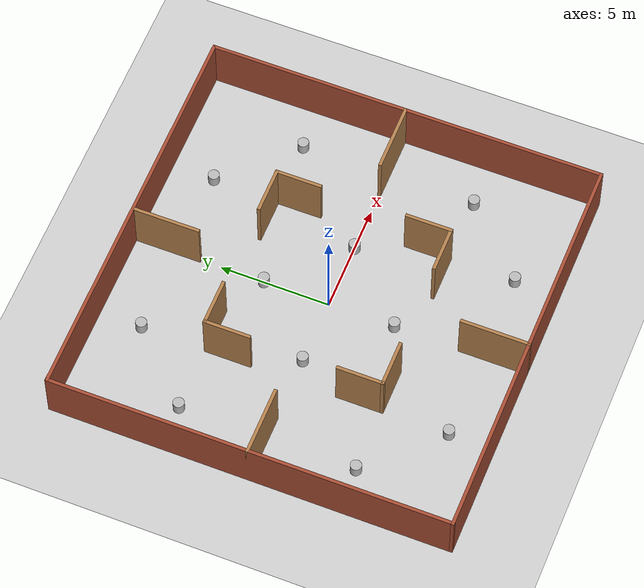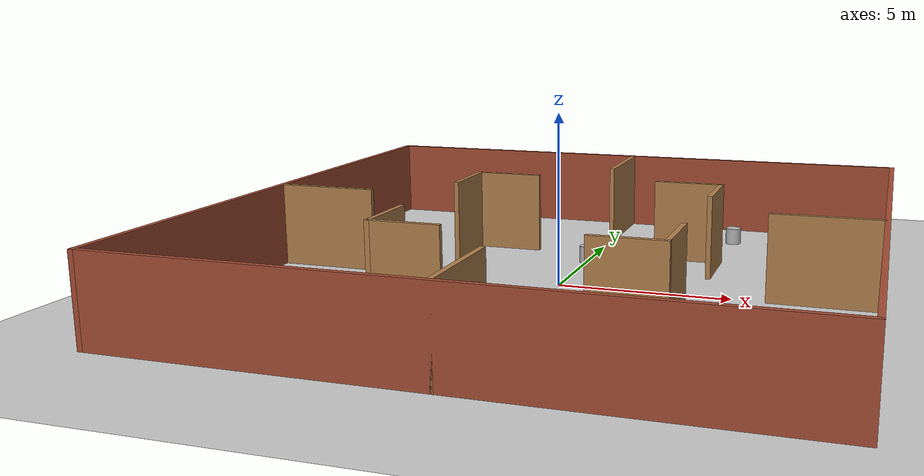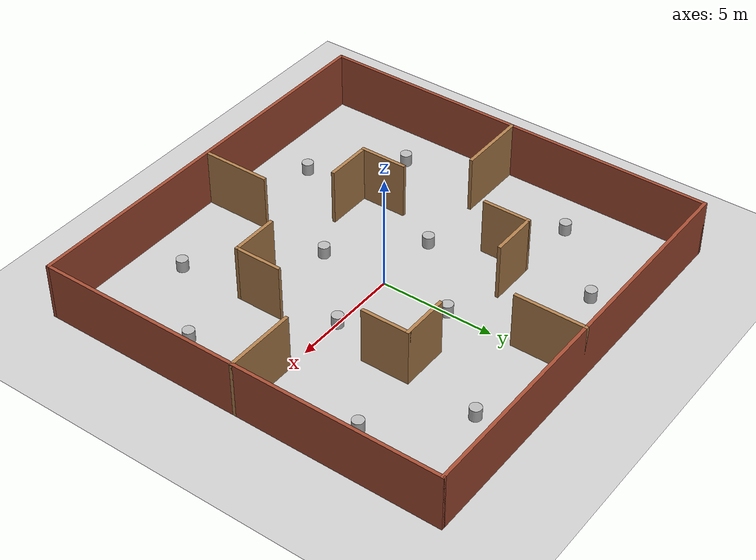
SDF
<?xml version="1.0"?>
<sdf version="1.6">
  <world name="default">

    <!-- Enable changing model pose in gazebo -->
    <plugin name="gazebo_ros_state" filename="libgazebo_ros_state.so">
      <ros>
        <namespace>/gazebo</namespace>
        <argument>--ros-args --remap model_states:=model_states_gazebo</argument>
        <argument>--ros-args --remap link_states:=link_states_gazebo</argument>
      </ros>
      <update_rate>50.0</update_rate>
    </plugin>

    <include>
      <uri>model://ground_plane</uri>
    </include>

    <include>
      <uri>model://sun</uri>
    </include>

    <scene>
      <shadows>false</shadows>
    </scene>

    <gui fullscreen='0'>
      <camera name='user_camera'>
        <pose frame=''>0.319654 -0.235002 9.29441 0 1.5138 0.009599</pose>
        <view_controller>orbit</view_controller>
        <projection_type>perspective</projection_type>
      </camera>
    </gui>

    <physics type="ode">
      <real_time_update_rate>1000.0</real_time_update_rate>
      <max_step_size>0.001</max_step_size>
      <real_time_factor>1</real_time_factor>
      <ode>
        <solver>
          <type>quick</type>
          <iters>150</iters>
          <precon_iters>0</precon_iters>
          <sor>1.400000</sor>
          <use_dynamic_moi_rescaling>1</use_dynamic_moi_rescaling>
        </solver>
        <constraints>
          <cfm>0.00001</cfm>
          <erp>0.2</erp>
          <contact_max_correcting_vel>2000.000000</contact_max_correcting_vel>
          <contact_surface_layer>0.01000</contact_surface_layer>
        </constraints>
      </ode>
    </physics>

    <model name="td7_world">
      <static>1</static>
      <include>
        <uri>model://td7_world</uri>
      </include>
    </model>

    <model name="obstacle_1">
      <pose>-3 0 0 0 0 0</pose>
      <include>
        <uri>model://obstacle</uri>
      </include>
    </model>

    <model name="obstacle_2">
      <pose>3 0 0 0 0 0</pose>
      <include>
        <uri>model://obstacle</uri>
      </include>
    </model>

    <model name="obstacle_3">
      <pose>0 3 0 0 0 0</pose>
      <include>
        <uri>model://obstacle</uri>
      </include>
    </model>

    <model name="obstacle_4">
      <pose>0 -3 0 0 0 0</pose>
      <include>
        <uri>model://obstacle</uri>
      </include>
    </model>

    <model name="obstacle_5">
      <pose>-7 4 0 0 0 0</pose>
      <include>
        <uri>model://obstacle</uri>
      </include>
    </model>

    <model name="obstacle_6">
      <pose>7 4 0 0 0 0</pose>
      <include>
        <uri>model://obstacle</uri>
      </include>
    </model>

    <model name="obstacle_7">
      <pose>7 -4 0 0 0 0</pose>
      <include>
        <uri>model://obstacle</uri>
      </include>
    </model>

    <model name="obstacle_8">
      <pose>-7 -4 0 0 0 0</pose>
      <include>
        <uri>model://obstacle</uri>
      </include>
    </model>

    <model name="obstacle_9">
      <pose>4 -7 0 0 0 0</pose>
      <include>
        <uri>model://obstacle</uri>
      </include>
    </model>

    <model name="obstacle_10">
      <pose>4 7 0 0 0 0</pose>
      <include>
        <uri>model://obstacle</uri>
      </include>
    </model>

    <model name="obstacle_11">
      <pose>-4 7 0 0 0 0</pose>
      <include>
        <uri>model://obstacle</uri>
      </include>
    </model>

    <model name="obstacle_12">
      <pose>-4 -7 0 0 0 0</pose>
      <include>
        <uri>model://obstacle</uri>
      </include>
    </model>

  </world>
</sdf>

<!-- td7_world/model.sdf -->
<sdf version='1.7'>
  <model name='td7_world'>
    <pose>0 0 0 0 -0 0</pose>
    <link name='Wall_0'>
      <collision name='Wall_0_Collision'>
        <geometry>
          <box>
            <size>18.15 0.15 2.5</size>
          </box>
        </geometry>
        <pose>0 0 1.25 0 -0 0</pose>
      </collision>
      <visual name='Wall_0_Visual'>
        <pose>0 0 1.25 0 -0 0</pose>
        <geometry>
          <box>
            <size>18.15 0.15 2.5</size>
          </box>
        </geometry>
        <material>
          <script>
            <uri>file://media/materials/scripts/gazebo.material</uri>
            <name>Gazebo/Bricks</name>
          </script>
          <ambient>1 1 1 1</ambient>
        </material>
        <meta>
          <layer>0</layer>
        </meta>
      </visual>
      <pose>0 9 0 0 -0 0</pose>
    </link>
    <link name='Wall_1'>
      <collision name='Wall_1_Collision'>
        <geometry>
          <box>
            <size>18.15 0.15 2.5</size>
          </box>
        </geometry>
        <pose>0 0 1.25 0 -0 0</pose>
      </collision>
      <visual name='Wall_1_Visual'>
        <pose>0 0 1.25 0 -0 0</pose>
        <geometry>
          <box>
            <size>18.15 0.15 2.5</size>
          </box>
        </geometry>
        <material>
          <script>
            <uri>file://media/materials/scripts/gazebo.material</uri>
            <name>Gazebo/Bricks</name>
          </script>
          <ambient>1 1 1 1</ambient>
        </material>
        <meta>
          <layer>0</layer>
        </meta>
      </visual>
      <pose>9 0 0 0 -0 -1.5708</pose>
    </link>
    <link name='Wall_11'>
      <collision name='Wall_11_Collision'>
        <geometry>
          <box>
            <size>2.15 0.15 2.5</size>
          </box>
        </geometry>
        <pose>0 0 1.25 0 -0 0</pose>
      </collision>
      <visual name='Wall_11_Visual'>
        <pose>0 0 1.25 0 -0 0</pose>
        <geometry>
          <box>
            <size>2.15 0.15 2.5</size>
          </box>
        </geometry>
        <material>
          <script>
            <uri>file://media/materials/scripts/gazebo.material</uri>
            <name>Gazebo/Wood</name>
          </script>
          <ambient>1 1 1 1</ambient>
        </material>
        <meta>
          <layer>0</layer>
        </meta>
      </visual>
      <pose>-3 -4 0 0 -0 3.14159</pose>
    </link>
    <link name='Wall_12'>
      <collision name='Wall_12_Collision'>
        <geometry>
          <box>
            <size>2.15 0.15 2.5</size>
          </box>
        </geometry>
        <pose>0 0 1.25 0 -0 0</pose>
      </collision>
      <visual name='Wall_12_Visual'>
        <pose>0 0 1.25 0 -0 0</pose>
        <geometry>
          <box>
            <size>2.15 0.15 2.5</size>
          </box>
        </geometry>
        <material>
          <script>
            <uri>file://media/materials/scripts/gazebo.material</uri>
            <name>Gazebo/Wood</name>
          </script>
          <ambient>1 1 1 1</ambient>
        </material>
        <meta>
          <layer>0</layer>
        </meta>
      </visual>
      <pose>-4 -3 0 0 -0 1.5708</pose>
    </link>
    <link name='Wall_14'>
      <collision name='Wall_14_Collision'>
        <geometry>
          <box>
            <size>2.15 0.15 2.5</size>
          </box>
        </geometry>
        <pose>0 0 1.25 0 -0 0</pose>
      </collision>
      <visual name='Wall_14_Visual'>
        <pose>0 0 1.25 0 -0 0</pose>
        <geometry>
          <box>
            <size>2.15 0.15 2.5</size>
          </box>
        </geometry>
        <material>
          <script>
            <uri>file://media/materials/scripts/gazebo.material</uri>
            <name>Gazebo/Wood</name>
          </script>
          <ambient>1 1 1 1</ambient>
        </material>
        <meta>
          <layer>0</layer>
        </meta>
      </visual>
      <pose>-4 3 0 0 -0 1.5708</pose>
    </link>
    <link name='Wall_15'>
      <collision name='Wall_15_Collision'>
        <geometry>
          <box>
            <size>2.15 0.15 2.5</size>
          </box>
        </geometry>
        <pose>0 0 1.25 0 -0 0</pose>
      </collision>
      <visual name='Wall_15_Visual'>
        <pose>0 0 1.25 0 -0 0</pose>
        <geometry>
          <box>
            <size>2.15 0.15 2.5</size>
          </box>
        </geometry>
        <material>
          <script>
            <uri>file://media/materials/scripts/gazebo.material</uri>
            <name>Gazebo/Wood</name>
          </script>
          <ambient>1 1 1 1</ambient>
        </material>
        <meta>
          <layer>0</layer>
        </meta>
      </visual>
      <pose>-3 4 0 0 -0 0</pose>
    </link>
    <link name='Wall_17'>
      <collision name='Wall_17_Collision'>
        <geometry>
          <box>
            <size>3.15 0.15 2.5</size>
          </box>
        </geometry>
        <pose>0 0 1.25 0 -0 0</pose>
      </collision>
      <visual name='Wall_17_Visual'>
        <pose>0 0 1.25 0 -0 0</pose>
        <geometry>
          <box>
            <size>3.15 0.15 2.5</size>
          </box>
        </geometry>
        <material>
          <script>
            <uri>file://media/materials/scripts/gazebo.material</uri>
            <name>Gazebo/Wood</name>
          </script>
          <ambient>1 1 1 1</ambient>
        </material>
        <meta>
          <layer>0</layer>
        </meta>
      </visual>
      <pose>0 7.5 0 0 -0 -1.5708</pose>
    </link>
    <link name='Wall_19'>
      <collision name='Wall_19_Collision'>
        <geometry>
          <box>
            <size>3.15 0.15 2.5</size>
          </box>
        </geometry>
        <pose>0 0 1.25 0 -0 0</pose>
      </collision>
      <visual name='Wall_19_Visual'>
        <pose>0 0 1.25 0 -0 0</pose>
        <geometry>
          <box>
            <size>3.15 0.15 2.5</size>
          </box>
        </geometry>
        <material>
          <script>
            <uri>file://media/materials/scripts/gazebo.material</uri>
            <name>Gazebo/Wood</name>
          </script>
          <ambient>1 1 1 1</ambient>
        </material>
        <meta>
          <layer>0</layer>
        </meta>
      </visual>
      <pose>7.5 0 0 0 -0 0</pose>
    </link>
    <link name='Wall_2'>
      <collision name='Wall_2_Collision'>
        <geometry>
          <box>
            <size>18.15 0.15 2.5</size>
          </box>
        </geometry>
        <pose>0 0 1.25 0 -0 0</pose>
      </collision>
      <visual name='Wall_2_Visual'>
        <pose>0 0 1.25 0 -0 0</pose>
        <geometry>
          <box>
            <size>18.15 0.15 2.5</size>
          </box>
        </geometry>
        <material>
          <script>
            <uri>file://media/materials/scripts/gazebo.material</uri>
            <name>Gazebo/Bricks</name>
          </script>
          <ambient>1 1 1 1</ambient>
        </material>
        <meta>
          <layer>0</layer>
        </meta>
      </visual>
      <pose>0 -9 0 0 -0 3.14159</pose>
    </link>
    <link name='Wall_21'>
      <collision name='Wall_21_Collision'>
        <geometry>
          <box>
            <size>3.15 0.15 2.5</size>
          </box>
        </geometry>
        <pose>0 0 1.25 0 -0 0</pose>
      </collision>
      <visual name='Wall_21_Visual'>
        <pose>0 0 1.25 0 -0 0</pose>
        <geometry>
          <box>
            <size>3.15 0.15 2.5</size>
          </box>
        </geometry>
        <material>
          <script>
            <uri>file://media/materials/scripts/gazebo.material</uri>
            <name>Gazebo/Wood</name>
          </script>
          <ambient>1 1 1 1</ambient>
        </material>
        <meta>
          <layer>0</layer>
        </meta>
      </visual>
      <pose>0 -7.5 0 0 -0 -1.5708</pose>
    </link>
    <link name='Wall_23'>
      <collision name='Wall_23_Collision'>
        <geometry>
          <box>
            <size>3.15 0.15 2.5</size>
          </box>
        </geometry>
        <pose>0 0 1.25 0 -0 0</pose>
      </collision>
      <visual name='Wall_23_Visual'>
        <pose>0 0 1.25 0 -0 0</pose>
        <geometry>
          <box>
            <size>3.15 0.15 2.5</size>
          </box>
        </geometry>
        <material>
          <script>
            <uri>file://media/materials/scripts/gazebo.material</uri>
            <name>Gazebo/Wood</name>
          </script>
          <ambient>1 1 1 1</ambient>
        </material>
        <meta>
          <layer>0</layer>
        </meta>
      </visual>
      <pose>-7.5 0 0 0 -0 3.14159</pose>
    </link>
    <link name='Wall_3'>
      <collision name='Wall_3_Collision'>
        <geometry>
          <box>
            <size>18.15 0.15 2.5</size>
          </box>
        </geometry>
        <pose>0 0 1.25 0 -0 0</pose>
      </collision>
      <visual name='Wall_3_Visual'>
        <pose>0 0 1.25 0 -0 0</pose>
        <geometry>
          <box>
            <size>18.15 0.15 2.5</size>
          </box>
        </geometry>
        <material>
          <script>
            <uri>file://media/materials/scripts/gazebo.material</uri>
            <name>Gazebo/Bricks</name>
          </script>
          <ambient>1 1 1 1</ambient>
        </material>
        <meta>
          <layer>0</layer>
        </meta>
      </visual>
      <pose>-9 0 0 0 -0 1.5708</pose>
    </link>
    <link name='Wall_5'>
      <collision name='Wall_5_Collision'>
        <geometry>
          <box>
            <size>2.15 0.15 2.5</size>
          </box>
        </geometry>
        <pose>0 0 1.25 0 -0 0</pose>
      </collision>
      <visual name='Wall_5_Visual'>
        <pose>0 0 1.25 0 -0 0</pose>
        <geometry>
          <box>
            <size>2.15 0.15 2.5</size>
          </box>
        </geometry>
        <material>
          <script>
            <uri>file://media/materials/scripts/gazebo.material</uri>
            <name>Gazebo/Wood</name>
          </script>
          <ambient>1 1 1 1</ambient>
        </material>
        <meta>
          <layer>0</layer>
        </meta>
      </visual>
      <pose>3 4 0 0 -0 0</pose>
    </link>
    <link name='Wall_6'>
      <collision name='Wall_6_Collision'>
        <geometry>
          <box>
            <size>2.15 0.15 2.5</size>
          </box>
        </geometry>
        <pose>0 0 1.25 0 -0 0</pose>
      </collision>
      <visual name='Wall_6_Visual'>
        <pose>0 0 1.25 0 -0 0</pose>
        <geometry>
          <box>
            <size>2.15 0.15 2.5</size>
          </box>
        </geometry>
        <material>
          <script>
            <uri>file://media/materials/scripts/gazebo.material</uri>
            <name>Gazebo/Wood</name>
          </script>
          <ambient>1 1 1 1</ambient>
        </material>
        <meta>
          <layer>0</layer>
        </meta>
      </visual>
      <pose>4 3 0 0 -0 -1.5708</pose>
    </link>
    <link name='Wall_8'>
      <collision name='Wall_8_Collision'>
        <geometry>
          <box>
            <size>2.15 0.15 2.5</size>
          </box>
        </geometry>
        <pose>0 0 1.25 0 -0 0</pose>
      </collision>
      <visual name='Wall_8_Visual'>
        <pose>0 0 1.25 0 -0 0</pose>
        <geometry>
          <box>
            <size>2.15 0.15 2.5</size>
          </box>
        </geometry>
        <material>
          <script>
            <uri>file://media/materials/scripts/gazebo.material</uri>
            <name>Gazebo/Wood</name>
          </script>
          <ambient>1 1 1 1</ambient>
        </material>
        <meta>
          <layer>0</layer>
        </meta>
      </visual>
      <pose>4 -3 0 0 -0 -1.5708</pose>
    </link>
    <link name='Wall_9'>
      <collision name='Wall_9_Collision'>
        <geometry>
          <box>
            <size>2.15 0.15 2.5</size>
          </box>
        </geometry>
        <pose>0 0 1.25 0 -0 0</pose>
      </collision>
      <visual name='Wall_9_Visual'>
        <pose>0 0 1.25 0 -0 0</pose>
        <geometry>
          <box>
            <size>2.15 0.15 2.5</size>
          </box>
        </geometry>
        <material>
          <script>
            <uri>file://media/materials/scripts/gazebo.material</uri>
            <name>Gazebo/Wood</name>
          </script>
          <ambient>1 1 1 1</ambient>
        </material>
        <meta>
          <layer>0</layer>
        </meta>
      </visual>
      <pose>3 -4 0 0 -0 3.14159</pose>
    </link>
    <static>1</static>
  </model>
</sdf>

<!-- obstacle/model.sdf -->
<sdf version='1.7'>
    <model name="obstacle">
      <link name="link">
        <collision name="collision">
          <geometry>
            <cylinder>
              <radius>0.25</radius>
              <length>1.0</length>
            </cylinder>
          </geometry>
        </collision>

        <visual name="visual">
          <geometry>
            <cylinder>
              <radius>0.25</radius>
              <length>1.0</length>
            </cylinder>
          </geometry>
        </visual>
      </link>
    </model>
</sdf>
